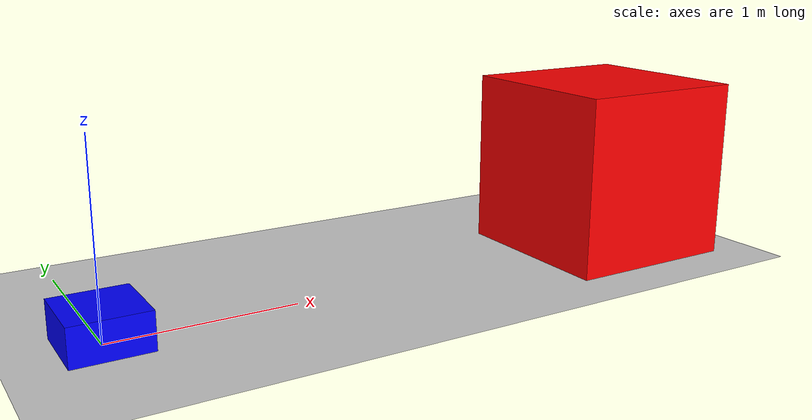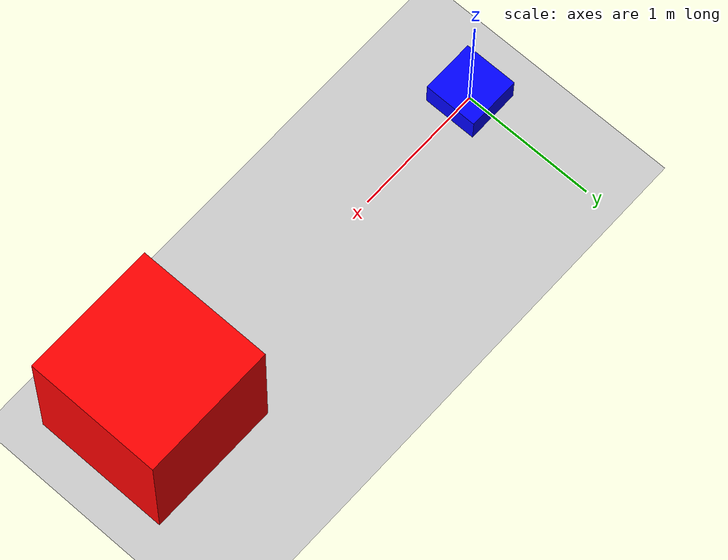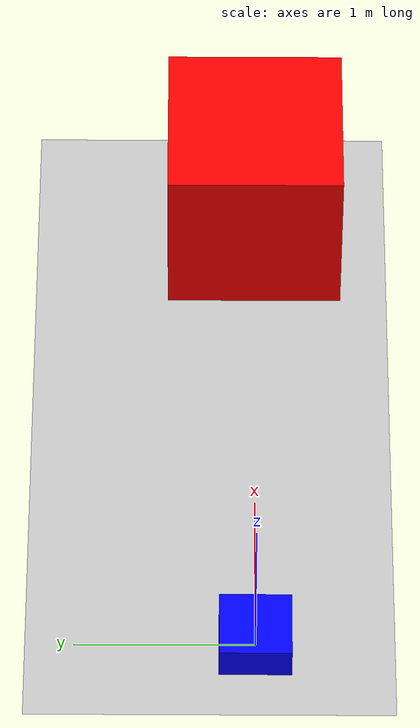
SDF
<?xml version="1.0"?>
<sdf version="1.9">
  <world name="minimal_lidar_world">
    <gravity>0 0 -9.8</gravity>

    <!-- Physics -->
    <plugin filename="gz-sim-physics-system" name="gz::sim::systems::Physics" />

    <!-- Scene broadcaster -->
    <plugin filename="gz-sim-scene-broadcaster-system" name="gz::sim::systems::SceneBroadcaster" />

    <!-- Sensors -->
    <plugin filename="gz-sim-sensors-system" name="gz::sim::systems::Sensors" />

    <!-- Simple ground -->
    <model name="ground_plane">
      <static>true</static>
      <pose>0 0 0 0 0 0</pose>
      <link name="link">
        <collision name="collision">
          <geometry>
            <plane>
              <normal>0 0 1</normal>
              <size>20 20</size>
            </plane>
          </geometry>
        </collision>
        <visual name="visual">
          <geometry>
            <plane>
              <normal>0 0 1</normal>
              <size>20 20</size>
            </plane>
          </geometry>
        </visual>
      </link>
    </model>

    <!-- Target box -->
    <model name="target">
      <pose>3 0 0.5 0 0 0</pose>
      <static>true</static>
      <link name="link">
        <visual name="visual">
          <geometry>
            <box>
              <size>1 1 1</size>
            </box>
          </geometry>
          <material>
            <diffuse>1 0 0 1</diffuse>
          </material>
        </visual>
        <collision name="collision">
          <geometry>
            <box>
              <size>1 1 1</size>
            </box>
          </geometry>
        </collision>
      </link>
    </model>

    <!-- Robot -->
    <include>
      <name>lidar_bot</name>
      <uri>file:///home/leonciao/lidar_ws/src/lidar_ign_demo/models/lidar_bot</uri>
      <pose>0 0 0.1 0 0 0</pose>
    </include>

  </world>
</sdf>

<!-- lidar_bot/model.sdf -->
<sdf version="1.9">
  <model name="lidar_bot">
    <pose>0 0 0 0 0 0</pose>

    <!-- Simple base link -->
    <link name="base_link">
      <inertial>
        <mass>1.0</mass>
        <inertia>
          <ixx>0.1</ixx>
          <iyy>0.1</iyy>
          <izz>0.1</izz>
        </inertia>
      </inertial>

      <!-- Just a small box so you can see it -->
      <visual name="base_visual">
        <geometry>
          <box>
            <size>0.4 0.4 0.2</size>
          </box>
        </geometry>
        <material>
          <diffuse>0 0 1 1</diffuse>
        </material>
      </visual>

      <collision name="base_collision">
        <geometry>
          <box>
            <size>0.4 0.4 0.2</size>
          </box>
        </geometry>
      </collision>

      <!-- Simple 2D lidar sensor (more stable than 3D) -->
      <sensor name="lidar" type="ray">
        <pose>0 0 0.15 0 0 0</pose>
        <update_rate>10</update_rate>
        <always_on>1</always_on>
        <visualize>true</visualize>

        <ray>
          <scan>
            <horizontal>
              <samples>360</samples>
              <resolution>1</resolution>
              <min_angle>-3.14159</min_angle>
              <max_angle>3.14159</max_angle>
            </horizontal>
          </scan>
          <range>
            <min>0.1</min>
            <max>30.0</max>
            <resolution>0.01</resolution>
          </range>
        </ray>
      </sensor>
    </link>
  </model>
</sdf>
